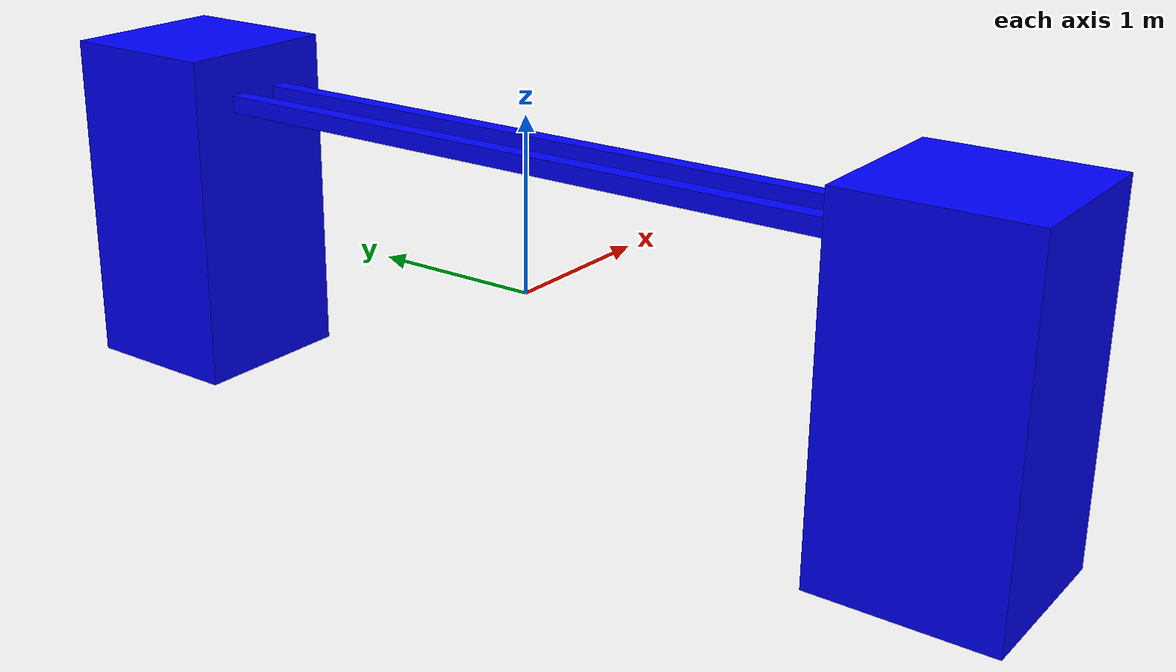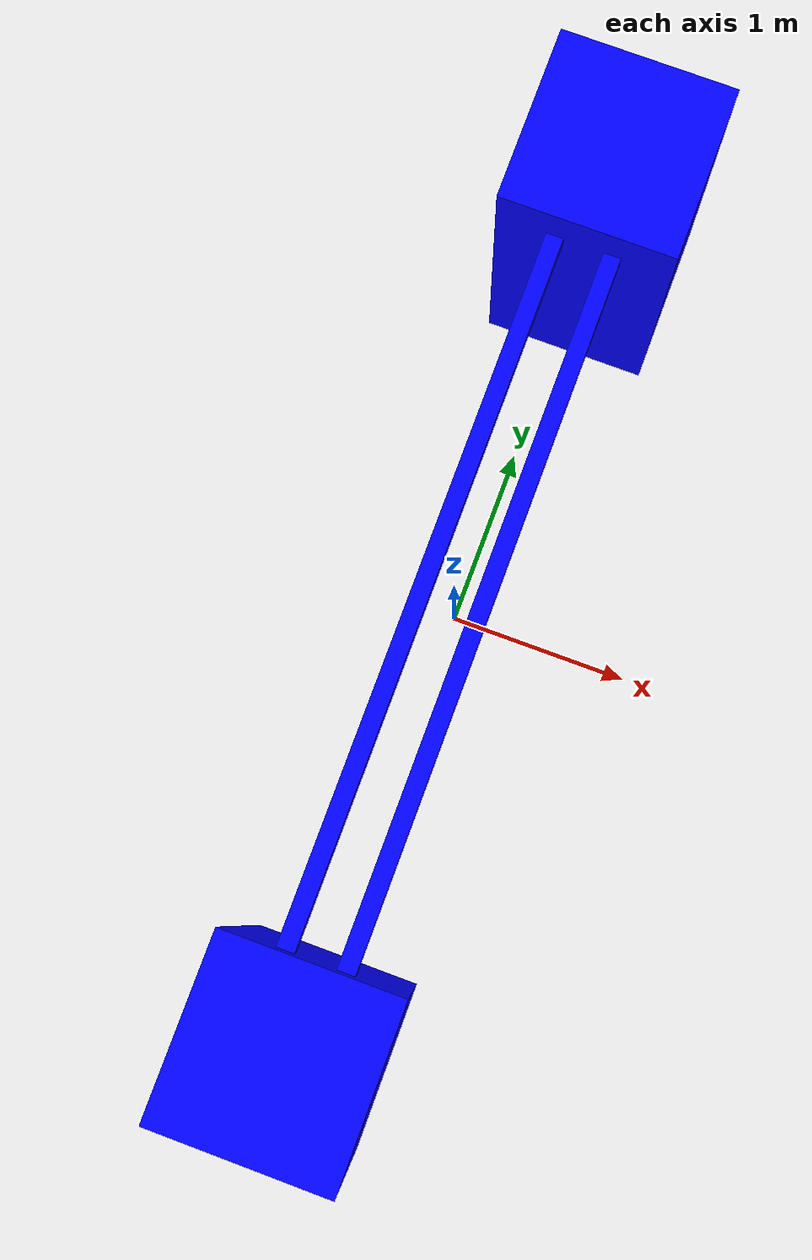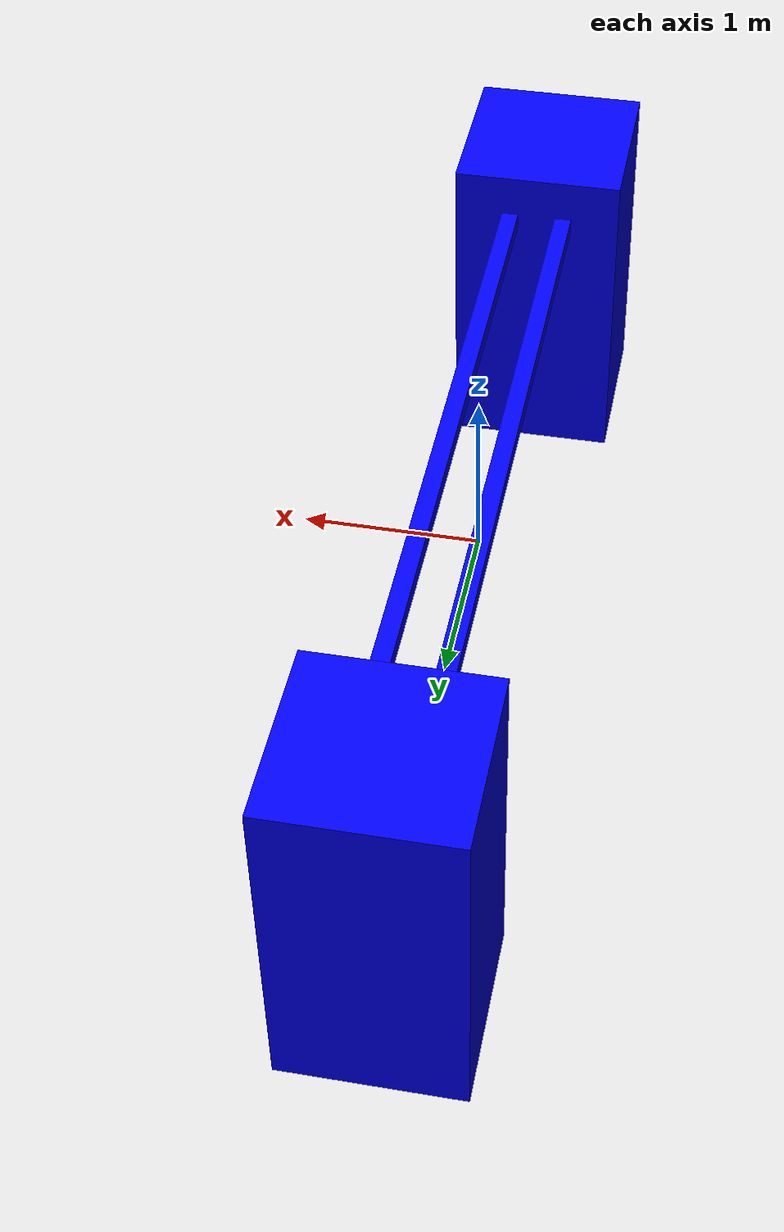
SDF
<?xml version='1.0'?>
<sdf version='1.6'>
  <model name='minimal_rail'>

    <link name='front_track'>
      <pose>0.1625 0 0.8 0 0 0</pose>
      <visual name='visual'>
        <geometry>
          <box>
            <size>0.1 5.0 0.1</size>  <!-- Thin in X, long in Y, thin in Z -->
          </box>
        </geometry>
        <material>
          <ambient>0 0 1 1</ambient>
          <diffuse>0 0 1 1</diffuse>
        </material>
      </visual>

      <collision name='collision'>
        <geometry>
          <box>
           <size>0.1 5.0 0.1</size>
          </box>
        </geometry>
        <surface>
          <friction>
            <ode>
              <mu>0.6</mu>
              <mu2>0.5</mu2>
            </ode>
          </friction>
        </surface>
      </collision>
    </link>

    <link name='back_track'>
      <pose>-0.1625 0 0.8 0 0 0</pose>
      <visual name='visual'>
        <geometry>
          <box>
            <size>0.1 5.0 0.1</size>  <!-- Thin in X, long in Y, thin in Z -->
          </box>
        </geometry>
        <material>
          <ambient>0 0 1 1</ambient>
          <diffuse>0 0 1 1</diffuse>
        </material>
      </visual>

          <collision name='collision'>
        <geometry>
          <box>
           <size>0.1 5.0 0.1</size>
          </box>
        </geometry>
        <surface>
          <friction>
            <ode>
              <mu>0.6</mu>
              <mu2>0.5</mu2>
            </ode>
          </friction>
        </surface>
      </collision>
    </link>

     <link name='left_end'>
      <pose>0 -2.5 0.1 0 0 0</pose>
      <visual name='visual'>
        <geometry>
          <box>
            <size>1 1 2</size>
          </box>
        </geometry>
        <material>
          <ambient>0 0 1 1</ambient>
          <diffuse>0 0 1 1</diffuse>
        </material>
      </visual>

      <collision name='collision'>
        <geometry>
          <box>
           <size>1 1 2</size>
          </box>
        </geometry>
        <surface>
          <friction>
            <ode>
              <mu>0.6</mu>
              <mu2>0.05</mu2>
            </ode>
          </friction>
        </surface>
      </collision>
    </link>

     <link name='right_end'>
      <pose>0 2.5 0.1 0 0 0</pose>
      <visual name='visual'>
        <geometry>
          <box>
            <size>1 1 2</size>
          </box>
        </geometry>
        <material>
          <ambient>0 0 1 1</ambient>
          <diffuse>0 0 1 1</diffuse>
        </material>
      </visual>

       <collision name='collision'>
        <geometry>
          <box>
           <size>1 1 2</size>
          </box>
        </geometry>
        <surface>
          <friction>
            <ode>
              <mu>0.6</mu>
              <mu2>0.05</mu2>
            </ode>
          </friction>
        </surface>
      </collision>
    </link>

    <static>true</static>
  </model>
</sdf>
